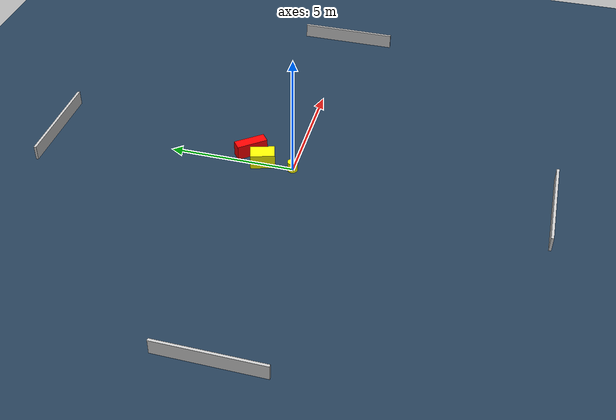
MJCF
<?xml version="1.0" ?>
<mujoco model="generated_environment">
  <option timestep="0.01" integrator="RK4" cone="elliptic"/>
  <default>
    <geom density="1"/>
  </default>
  <asset>
    <texture builtin="gradient" height="3072" name="skybox" rgb1="0.3 0.5 0.7" rgb2="0 0 0" type="skybox" width="512"/>
    <texture builtin="checker" height="300" name="groundplane" rgb1="0.2 0.3 0.4" rgb2="0.1 0.2 0.3" type="2d" width="300"/>
    <material name="groundplane" reflectance="0.2" texrepeat="5 5" texture="groundplane"/>
  </asset>
  <worldbody>
    <light dir="0 0 -1" directional="true" pos="0 0 1.5"/>
    <geom condim="3" friction="0.5 0.005 0.001" material="groundplane" name="floor" pos="0 0 0" size="0 0 0.05" type="plane"/>
    <body name="walls">
      <geom name="wall_1" condim="4" pos="-10.0 0.0 0.3" rgba="0.800000011920929 0.800000011920929 0.800000011920929 1.0" size="0.05 2.0 0.3" type="box"/>
      <geom name="wall_2" condim="4" pos="10.0 0.0 0.3" rgba="0.800000011920929 0.800000011920929 0.800000011920929 1.0" size="0.05 2.0 0.3" type="box"/>
      <geom name="wall_3" condim="4" pos="0.0 -10.0 0.3" rgba="0.800000011920929 0.800000011920929 0.800000011920929 1.0" size="2.0 0.05 0.3" type="box"/>
      <geom name="wall_4" condim="4" pos="0.0 10.0 0.3" rgba="0.800000011920929 0.800000011920929 0.800000011920929 1.0" size="2.0 0.05 0.3" type="box"/>
    </body>
    <body name="robot">
      <joint name="joint_x" type="slide" pos="0 0 0" axis="1 0 0"/>
      <joint name="joint_y" type="slide" pos="0 0 0" axis="0 1 0"/>
      <geom name="robot" type="cylinder" pos="0.0 0.0 0.2" size="0.2 0.2 0.0" mass="5.0" friction="1.0 0.005 0.0001" condim="4" rgba="1.0 1.0 0.0 1.0"/>
    </body>
    <body name="obstacle_1_movable">
      <geom name="obstacle_1_movable" condim="4" pos="0.08523394189903237 1.2552777507285477 0.3" euler="0 0 197.13850871065605" friction="0.0 0.005 0.001" rgba="1.0 1.0 0.0 1.0" size="0.31443789429706837 0.4849540993097048 0.3" type="box" mass="0.1"/>
      <joint type="free"/>
    </body>
    <body name="obstacle_2_static">
      <geom name="obstacle_2_static" condim="4" pos="0.6145807902029998 1.8976104705909673 0.3" euler="0 0 128.57607729851028" friction="0.0 0.005 0.001" rgba="1.0 0.0 0.0 1.0" size="0.626785938701598 0.21187487005546035 0.3" type="box"/>
    </body>
  </worldbody>
  <actuator>
    <motor name="actuator_x" joint="joint_x" gear="1" ctrlrange="-1 1"/>
    <motor name="actuator_y" joint="joint_y" gear="1" ctrlrange="-1 1"/>
  </actuator>
</mujoco>
